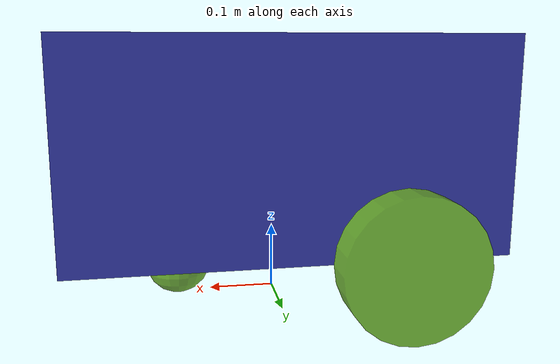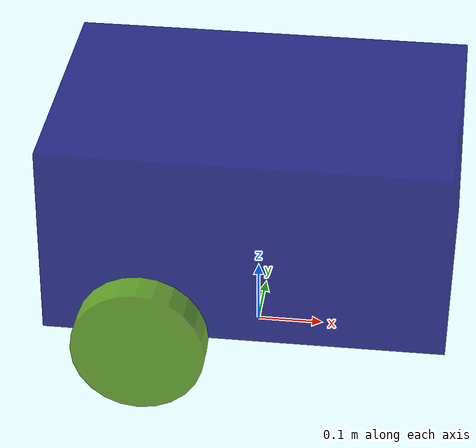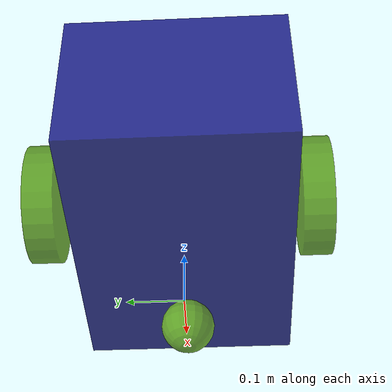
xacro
<?xml version="1.0"?>
<robot name="three_car" xmlns:xacro="http://www.ros.org/wiki/xacro" >
    <!-- 包含common_properties.xacro -->
    <xacro:include filename="mobile_base.xacro" />
    <xacro:include filename="mobile_base_gazebo.launch.xacro" />

</robot>

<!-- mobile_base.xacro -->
<robot xmlns:xacro="http://www.ros.org/wiki/xacro" >
    <!--包含common_properties.xacro-->
    <xacro:include filename="common_properties.xacro" />
<!--属性-->
    <xacro:property name="base_length" value="0.6" />
    <xacro:property name="base_width" value="0.4" />
    <xacro:property name="base_height" value="0.3" />
    <xacro:property name="wheel_radius" value="0.1" />
    <xacro:property name="wheel_length" value="0.05" />
    <xacro:property name="caster_wheel_radius" value="0.05" />
    <link name="base_footprint" />
    <link name="base_link" >
        <visual>
            <geometry>
            <!--size 单位：米 size 往两个上下左右前后六个方向扩展-->
                <box size="${base_length} ${base_width} ${base_height}" />
            </geometry>
            <!--origin 指定visual几何中心的偏移量(相对于base_footprint的坐标系) -->
            <origin xyz="0 0 ${base_height/2.0}" rpy="0 0 0" />
            <material name="blue" />
        </visual>
        <xacro:box_inertia m="4.0" x="${base_length}" y="${base_width}" z="${base_height}" o_xyz="0 0 ${base_height/2.0}" o_rpy="0 0 0" />
        <!--碰撞属性-->
        <collision>
            <origin xyz="0 0 ${base_height/2.0}" rpy="0 0 0" />
            <geometry>
                <box size="${base_length} ${base_width} ${base_height}" />
            </geometry>
        </collision>
    </link>
    <xacro:macro name="wheel" params="name">
        <link name="rear_${name}_link" >
            <visual>
                <geometry>
                    <cylinder radius="${wheel_radius}" length="${wheel_length}" />
                </geometry>
                <origin xyz="0 0 0" rpy="${pi/2.0} 0 0" />
                <material name="green" />
            </visual>
            <xacro:cylinder_inertia m="1.0" r="${wheel_radius}" h="${wheel_length}" o_xyz="0 0 0" o_rpy="${pi/2.0} 0 0" />
            <!--碰撞属性-->
            <collision>
                <origin xyz="0 0 0" rpy="0 0 0" />
                <geometry>
                    <sphere radius="${wheel_radius}" />
                </geometry>
            </collision>
        </link>
    </xacro:macro>
    <!--宏的调用-->
    <xacro:wheel name="right" />
    <xacro:wheel name="left" />

    <link name="caster_wheel_link" >
        <visual>
            <geometry>
                <sphere radius="${caster_wheel_radius}" />
            </geometry>
            <origin xyz="0 0 0" rpy="0 0 0" />
            <material name="green" />
        </visual>
        <xacro:sphere_inertia m="1.0" r="${caster_wheel_radius}" o_xyz="0 0 0" o_rpy="0 0 0" />
        <!--碰撞属性-->
        <collision>
            <origin xyz="0 0 0" rpy="0 0 0" />
            <geometry>
                <sphere radius="${caster_wheel_radius}" />
            </geometry>
        </collision>
    </link>

    <joint name="base_joint" type="fixed" >
        <parent link="base_footprint" />
        <child link="base_link" />
        <origin xyz="0 0 0.1" rpy="0 0 0" />
    </joint>

    <joint name="base_rear_left_joint" type="continuous" >
        <parent link="base_link" />
        <child link="rear_left_link" />
        <origin xyz="${-base_length/4.0} ${base_width/2.0+wheel_length/2.0} 0" rpy="0 0 0" />
        <axis xyz="0 1 0" />
    </joint>
    <joint name="base_rear_right_joint" type="continuous" >
        <parent link="base_link" />
        <child link="rear_right_link" />
        <origin xyz="${-base_length/4.0} ${-base_width/2.0-wheel_length/2.0} 0" rpy="0 0 0" />
        <axis xyz="0 1 0" />
    </joint>
    <joint name="caster_wheel_joint" type="fixed" >
        <parent link="base_link" />
        <child link="caster_wheel_link" />
        <origin xyz="${base_length/4.0} 0 -0.05" rpy="0 0 0" />
    </joint>
    </robot>

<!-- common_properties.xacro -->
<robot xmlns:xacro="http://www.ros.org/wiki/xacro" >
   <material name="blue">
    <!--rgba 红 绿 蓝 透明度-->
        <color rgba="0 0 0.5 0.8" />
    </material>
    <material name="green">
    <!--rgba 红 绿 蓝 透明度-->
        <color rgba="0.3 0.6 0 0.8" />
    </material>
    <material name="grey">
    <!--rgba 红 绿 蓝 透明度-->
        <color rgba="0.5 0.5 0.5 0.8" />
    </material>

    <xacro:macro name="box_inertia" params="m x y z o_xyz o_rpy">
        <inertial>
            <mass value="${m}" />
            <origin xyz="${o_xyz}" rpy="${o_rpy}" />
            <inertia    ixx="${(m/12)*(y*y+z*z)}" ixy="0" ixz="0"
                        iyy="${(m/12)*(x*x+z*z)}" iyz="0"
                        izz="${(m/12)*(y*y+x*x)}" />
        </inertial>
    </xacro:macro>
    <xacro:macro name="sphere_inertia" params="m r o_xyz o_rpy">
        <inertial>
            <mass value="${m}" />
            <origin xyz="${o_xyz}" rpy="${o_rpy}" />
            <inertia    ixx="${(2*m/5)*(r*r)}" ixy="0" ixz="0"
                        iyy="${(2*m/5)*(r*r)}" iyz="0"
                        izz="${(2*m/5)*(r*r)}" />
        </inertial>
    </xacro:macro>
    <xacro:macro name="cylinder_inertia" params="m r h o_xyz o_rpy">
        <inertial>
            <mass value="${m}" />
            <origin xyz="${o_xyz}" rpy="${o_rpy}" />
            <inertia    ixx="${(m/12)*(3*r*r+h*h)}" ixy="0" ixz="0"
                        iyy="${(m/12)*(3*r*r+h*h)}" iyz="0"
                        izz="${(m/2)*(r*r)}" />
        </inertial>
    </xacro:macro>
</robot>
